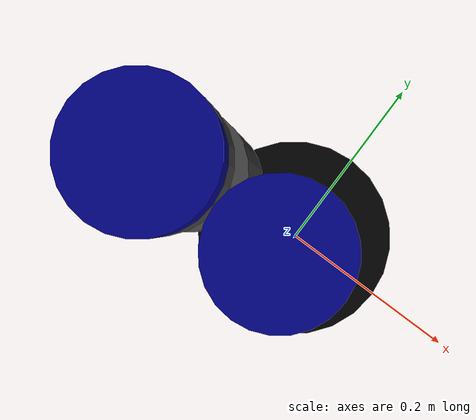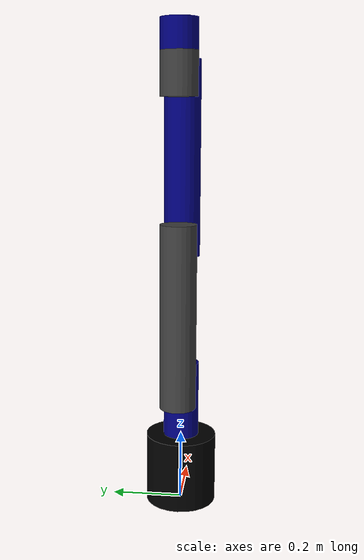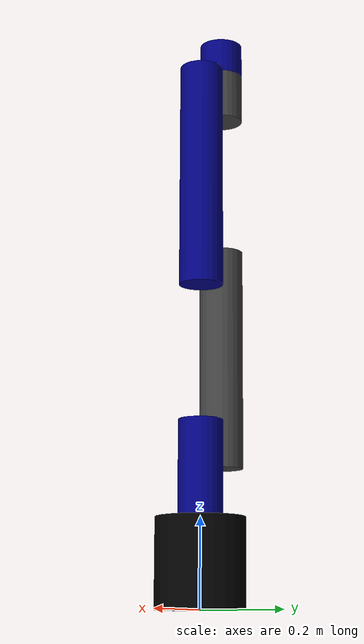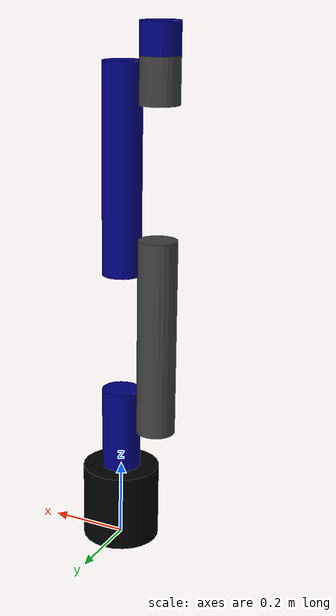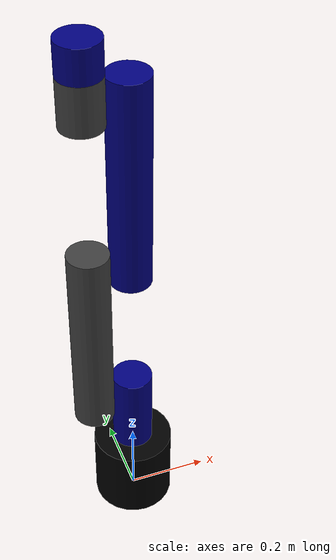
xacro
<?xml version="1.0"?>
<robot xmlns:xacro="http://www.ros.org/wiki/xacro" name="five_dof_robot_manipulator">
    <xacro:arg name="initial_positions_file" default="initial_positions.yaml" />

    <!-- Import five_dof_robot_manipulator urdf file -->
    <xacro:include filename="$(find manipulator)/urdf/model.urdf.xacro" />

    <!-- Import control_xacro -->
    <xacro:include filename="five_dof_robot_manipulator.ros2_control.xacro" />

    <xacro:five_dof_robot_manipulator_ros2_control name="FakeSystem" initial_positions_file="$(arg initial_positions_file)"/>

</robot>

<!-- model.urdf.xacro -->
<robot xmlns:xacro="http://www.ros.org/wiki/xacro" name="five_dof_robot_manipulator">

    <xacro:include filename="inertial_macros.xacro"/>

    <gazebo>
        <plugin name="gazebo_ros2_control" filename="libgazebo_ros2_control.so">
            <parameters>/home/bgb_6342/manipulator_ws/src/manipulator/config/ros2_controllers.yaml</parameters>
        </plugin>
    </gazebo>

    <!-- COLOR DEFINITIONS -->
    <material name="blue">
        <color rgba="0 0 1 1"/>
    </material>

    <material name="dark_blue">
        <color rgba="0 0 0.5 1"/>
    </material>

    <material name="black">
        <color rgba="0 0 0 1"/>
    </material>

    <material name="white">
        <color rgba="1 1 1 1"/>
    </material>

    <material name="grey">
        <color rgba="0.5 0.5 0.5 1"/>
    </material>

    <material name="dark_grey">
        <color rgba="0.25 0.25 0.25 1"/>
    </material>

    <!-- We add a dummy world link and a fixed joint to fix our robot to the world -->
    <!-- This is important for gazebo simulation -->

    <link name="world"/>

    <joint name="fixed_joint" type="fixed">
        <origin rpy="0 0 0" xyz="0 0 0.1" />
        <parent link="world"/>
        <child link="base_link"/>
    </joint>

    <link name="base_link">
        <visual>
            <geometry>
                <cylinder length="0.2" radius="0.1"/>
            </geometry>
            <origin rpy="0 0 0" xyz="0 0 0" />
            <material name="black"/>
        </visual>
        <collision>
            <geometry>
                <cylinder length="0.2" radius="0.1"/>
            </geometry>
            <origin rpy="0 0 0" xyz="0 0 0" />
        </collision>
        <xacro:inertial_cylinder mass="0.5" length="0.2" radius="0.1">
            <origin xyz="0 0 0" rpy="0 0 0"/>
        </xacro:inertial_cylinder>
    </link>

    <gazebo reference="base_link">
        <material>Gazebo/Black</material>
    </gazebo>

    <joint name="joint_1" type="revolute">
        <parent link="base_link"/>
        <child link="link_1"/>

        <origin rpy="0 0 0" xyz="0 0 0.1" />

        <axis xyz="0 0 1"/>
        <limit effort="300" velocity="2.0" lower="-3.141593" upper="3.141593"/>
    </joint>

    <link name="link_1">
        <visual>
            <geometry>
                <cylinder length="0.215" radius="0.05"/>
            </geometry>
            <origin rpy="0 0 0" xyz="0 0 0.1075" />
            <material name="dark_blue"/>
        </visual>
        <collision>
            <geometry>
                <cylinder length="0.215" radius="0.05"/>
            </geometry>
            <origin rpy="0 0 0" xyz="0 0 0.1075" />
        </collision>
        <xacro:inertial_cylinder mass="0.5" length="0.215" radius="0.05">
            <origin rpy="0 0 0" xyz="0 0 0.1075" />
        </xacro:inertial_cylinder>
    </link>

    <gazebo reference="link_1">
        <material>Gazebo/Blue</material>
    </gazebo>

    <joint name="joint_2" type="revolute">
        <parent link="link_1"/>
        <child link="link_2"/>

        <origin rpy="0 -1.570796 0" xyz="-0.05 0 0.165" />

        <axis xyz="0 0 1"/>
        <limit effort="300" velocity="2.0" lower="-3.141593" upper="3.141593"/>
    </joint>

    <link name="link_2">
        <visual>
            <geometry>
                <cylinder length="0.51" radius="0.05"/>
            </geometry>
            <origin rpy="0 1.570796 0" xyz="0.205 0 0.05" />
            <material name="dark_grey"/>
        </visual>
        <collision>
            <geometry>
                <cylinder length="0.51" radius="0.05"/>
            </geometry>
            <origin rpy="0 1.570796 0" xyz="0.205 0 0.05" />
        </collision>
        <xacro:inertial_cylinder mass="0.5" length="0.51" radius="0.05">
            <origin rpy="0 1.570796 0" xyz="0.205 0 0.05" />
        </xacro:inertial_cylinder>
    </link>

    <gazebo reference="link_2">
        <material>Gazebo/Grey</material>
    </gazebo>

    <joint name="joint_3" type="revolute">
        <parent link="link_2"/>
        <child link="link_3"/>

        <origin rpy="0 0 0" xyz="0.41 0 0"/>

        <axis xyz="0 0 1"/>
        <limit effort="300" velocity="2.0" lower="-3.141593" upper="3.141593"/>
    </joint>

    <link name="link_3">
        <visual>
            <geometry>
                <cylinder length="0.53" radius="0.05"/>
            </geometry>
            <origin rpy="0 1.570796 0" xyz="0.215 0 -0.05" />
            <material name="dark_blue"/>
        </visual>
        <collision>
            <geometry>
                <cylinder length="0.53" radius="0.05"/>
            </geometry>
            <origin rpy="0 1.570796 0" xyz="0.215 0 -0.05" />
        </collision>
        <xacro:inertial_cylinder mass="0.5" length="0.53" radius="0.05">
            <origin rpy="0 1.570796 0" xyz="0.215 0 -0.05" />
        </xacro:inertial_cylinder>
    </link>

    <gazebo reference="link_3">
        <material>Gazebo/Blue</material>
    </gazebo>

    <joint name="joint_4" type="revolute">
        <parent link="link_3"/>
        <child link="link_4"/>

        <origin rpy="0 0 0" xyz="0.43 0 0"/>

        <axis xyz="0 0 1"/>
        <limit effort="300" velocity="2.0" lower="-3.141593" upper="3.141593"/>
    </joint>

    <link name="link_4">
        <visual>
            <geometry>
                <cylinder length="0.115" radius="0.05"/>
            </geometry>
            <origin rpy="0 1.570796 0" xyz="0.0075 0 0.05" />
            <material name="dark_grey"/>
        </visual>
        <collision>
            <geometry>
                <cylinder length="0.115" radius="0.05"/>
            </geometry>
            <origin rpy="0 1.570796 0" xyz="0.0075 0 0.05" />
        </collision>
        <xacro:inertial_cylinder mass="0.5" length="0.115" radius="0.05">
            <origin rpy="0 1.570796 0" xyz="0.0075 0 0.05" />
        </xacro:inertial_cylinder>
    </link>

    <gazebo reference="link_4">
        <material>Gazebo/Grey</material>
    </gazebo>

    <joint name="joint_5" type="revolute">
        <parent link="link_4"/>
        <child link="link_5"/>

        <origin rpy="0 1.570796 0" xyz="0.065 0 0.05"/>

        <axis xyz="0 0 1"/>
        <limit effort="300" velocity="2.0" lower="-3.141593" upper="3.141593"/>
    </joint>

    <link name="link_5">
        <visual>
            <geometry>
                <cylinder length="0.08" radius="0.05"/>
            </geometry>
            <origin rpy="0 0 0" xyz="0 0 0.04" />
            <material name="dark_blue"/>
        </visual>
        <collision>
            <geometry>
                <cylinder length="0.08" radius="0.05"/>
            </geometry>
            <origin rpy="0 0 0" xyz="0 0 0.04" />
        </collision>
        <xacro:inertial_cylinder mass="0.5" length="0.08" radius="0.05">
            <origin rpy="0 0 0" xyz="0 0 0.04" />
        </xacro:inertial_cylinder>
    </link>

    <gazebo reference="link_5">
        <material>Gazebo/Blue</material>
    </gazebo>

    <ros2_control name="GazeboSystem" type="system">
        <hardware>
            <plugin>fake_components/GenericSystem</plugin>
        </hardware>
        <joint name="joint_1">
                <command_interface name="position"/>
                <state_interface name="position"/>
                <state_interface name="velocity"/>
        </joint>
        <joint name="joint_2">
            <command_interface name="position"/>
            <state_interface name="position"/>
            <state_interface name="velocity"/>
        </joint>
        <joint name="joint_3">
            <command_interface name="position"/>
            <state_interface name="position"/>
            <state_interface name="velocity"/>
        </joint>
        <joint name="joint_4">
            <command_interface name="position"/>
            <state_interface name="position"/>
            <state_interface name="velocity"/>
        </joint>
        <joint name="joint_5">
            <command_interface name="position"/>
            <state_interface name="position"/>
            <state_interface name="velocity"/>
        </joint>
    </ros2_control>

</robot>
